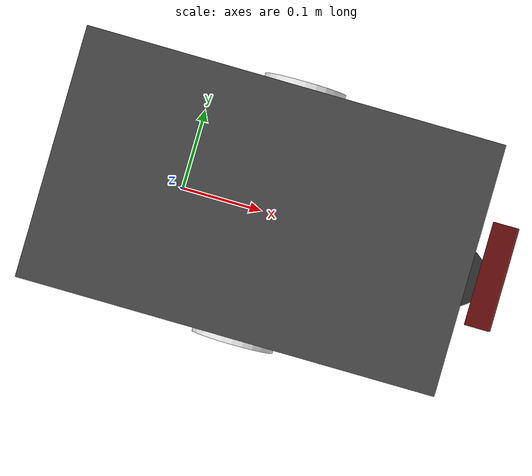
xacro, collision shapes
<?xml version="1.0"?>
<robot xmlns:xacro="http://www.ros.org/wiki/xacro"  name="robot">

    <!-- Example link -->
    <xacro:include filename="robot_core.xacro"/>
    <xacro:include filename="gazebo_control.xacro"/>

    <xacro:generic_laser>
        <xacro:insert_block name="laser_pose" />
    </xacro:generic_laser>

    <xacro:depth_sensor>
        <xacro:insert_block name="depth_sensor_pose" />
    </xacro:depth_sensor>
</robot>

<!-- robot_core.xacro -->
<robot xmlns:xacro="http://www.ros.org/wiki/xacro" >

    <xacro:include filename="inertial_macros.xacro"/>
    <xacro:include filename="$(find robolaunch_cloudy_description)/sensors/generic_laser.urdf.xacro" />
    <xacro:include filename="$(find robolaunch_cloudy_description)/urdf/properties.urdf.xacro" />
    <xacro:include filename="$(find robolaunch_cloudy_description)/sensors/depth_sensor.urdf.xacro" />
    <xacro:property name="depth_sensor_pose">
        <origin xyz="0.38 0 0.11" rpy="0 -0.15 0"/>
    </xacro:property>

   <xacro:property name="scale_ratio" value="0.0015" />
   <link name="base_footprint"/>

    <material name="white">
        <color rgba="1 1 1 1" />
    </material>

    <material name="orange">
        <color rgba="1 0.3 0.1 1"/>
    </material>

    <material name="blue">
        <color rgba="0.2 0.2 1 1"/>
    </material>

    <material name="black">
        <color rgba="0 0 0 1"/>
    </material>
  <material name="gray">
        <color rgba="0.3 0.3 0.3 1"/>
    </material>

    <!-- BASE LINK -->

    <link name="base_link">

    </link>

    <joint name="base_to_footprint" type="fixed">
      <parent link="base_footprint"/>
      <child link="base_link"/>
      <origin xyz="0 0 0.035" rpy="0 0 0"/>
    </joint>

    <!-- CHASSIS LINK -->

    <joint name="chassis_joint" type="fixed">
        <parent link="base_link"/>
        <child link="chassis"/>
        <origin xyz="0 -0.2 0" rpy="0 0 1.57 "/>
    </joint>

    <link name="chassis">
        <visual>
            <origin xyz="0 0.15 -0.02" rpy="1.57 0 0"/>
            <geometry>
                <mesh scale="${scale_ratio} ${scale_ratio} ${scale_ratio}" filename="file://$(find robolaunch_cloudy_description)/urdf/meshes/body_v2.stl"/>
            </geometry>
            <material name="gray"/>
        </visual>
        <collision>
            <origin xyz="0.20 -0.1 0.075"/>
            <geometry>
                <box size="0.3 0.5 0.15"/>
            </geometry>
        </collision>
        <xacro:inertial_box mass="0.5" x="0.3" y="0.3" z="0.15">
            <origin xyz="0.15 0 0.072" rpy="0 0 0"/>
        </xacro:inertial_box>
    </link>
    <gazebo reference="chassis">
    <material>Gazebo/DarkGrey</material>
      <mu1>0.2</mu1>
      <mu2>0.2</mu2>

    </gazebo>

    <!-- LEFT WHEEL LINK -->

    <joint name="left_wheel_joint" type="continuous">
        <parent link="base_link"/>
        <child link="left_wheel"/>
        <origin xyz="0.11 0.14 0.046" rpy="-${pi/2} 0 0" />
        <axis xyz="0 0 1"/>
    </joint>

    <link name="right_wheel">
        <visual>
            <geometry>
                <mesh scale="${scale_ratio} ${scale_ratio} ${scale_ratio}" filename="file://$(find robolaunch_cloudy_description)/urdf/meshes/wheel_v2.stl" />
            </geometry>
            <material name="white"/>
            <origin xyz="-0.067 -0.05 -0.15" rpy="0 0 0" />

        </visual>
        <collision>
            <geometry>
                <cylinder radius="0.05" length="0.04"/>
            </geometry>
        </collision>
        <xacro:inertial_cylinder mass="0.1" length="0.04" radius="0.05">
            <origin xyz="0 0 0" rpy="0 0 0"/>
        </xacro:inertial_cylinder>
    </link>
    <gazebo reference="left_wheel">
    <material>Gazebo/White</material>
    </gazebo>
    <!-- RIGHT WHEEL LINK -->

    <joint name="right_wheel_joint" type="continuous">
        <parent link="base_link"/>
        <child link="right_wheel"/>
        <origin xyz="0.11 -0.14 0.046" rpy="-${pi/2} 0 0" />
        <axis xyz="0 0 1"/>
    </joint>

    <link name="left_wheel">
        <visual>
            <geometry>
                <mesh scale="${scale_ratio} ${scale_ratio} ${scale_ratio}" filename="file://$(find robolaunch_cloudy_description)/urdf/meshes/wheel_v2.stl" />
            </geometry>
            <origin xyz="-0.067 -0.05 -0.15" rpy="0 0 0" />
            <material name="white"/>
        </visual>
        <collision>
            <geometry>
                <cylinder radius="0.05" length="0.04"/>
            </geometry>
        </collision>
        <xacro:inertial_cylinder mass="0.1" length="0.04" radius="0.05">
            <origin xyz="0 0 0" rpy="0 0 0"/>
        </xacro:inertial_cylinder>
    </link>
    <gazebo reference="right_wheel">
    <material>Gazebo/White</material>
    </gazebo>

    <!-- CASTER WHEEL LINK -->

</robot>

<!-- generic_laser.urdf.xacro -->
<robot xmlns:xacro="http://ros.org/wiki/xacro">
  <xacro:include filename="$(find robolaunch_cloudy_description)/sensors/laser.urdf.xacro" />

  <xacro:macro name="generic_laser" params="*origin">
    <xacro:laser
      update_rate="10"
      ray_count="360"
      min_angle="-3.1416"
      max_angle="3.1416"
      min_range="0.08"
      max_range="12.0"
      frame_id="laser"
      topic_name="scan"
    >
      <xacro:insert_block name="origin" />
    </xacro:laser>
  </xacro:macro>

  <xacro:macro name="generic_base_laser" params="*origin">
    <xacro:laser
      update_rate="10"
      ray_count="360"
      min_angle="-3.1416"
      max_angle="3.1416"
      min_range="0.21"
      max_range="5.5"
      frame_id="base_laser"
      topic_name="base/scan"
    >
      <xacro:insert_block name="origin" />
    </xacro:laser>
  </xacro:macro>
</robot>

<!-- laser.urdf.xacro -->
<robot xmlns:xacro="http://ros.org/wiki/xacro">
  <xacro:property name="M_PI" value="3.1415926535897931" />
  <xacro:macro name="laser" params="*origin update_rate ray_count min_angle max_angle min_range max_range frame_id topic_name">
    <link name="${frame_id}">
      <visual>
        <origin xyz="0.04 -0.038 -0.03" rpy="1.57 0 3.14"/>
        <geometry>
              <mesh scale="${scale_ratio} ${scale_ratio} ${scale_ratio}" filename="file://$(find robolaunch_cloudy_description)/urdf/meshes/lidar.stl" />

         </geometry>
  <material name="darkgray">
        <color rgba="0.2 0.2 0.2 1"/>
    </material>

      </visual>
      <collision>
        <origin xyz="0.02 0 -0.018" rpy="0 0 0"/>
        <geometry>
          <cylinder radius="0.0375" length="0.02"/>
        </geometry>
      </collision>

      <inertial>
        <origin xyz="0 0 0" rpy="0 0 0"/>
        <mass value="0.1"/>
        <inertia ixx="${(2/5) * 0.1 * (0.0375 * 0.0375)}" ixy="0" ixz="0"
                 iyy="${(2/5) * 0.1 * (0.0375 * 0.0375)}" iyz="0"
                 izz="${(2/5) * 0.1 * (0.0375 * 0.0375)}" />
      </inertial>
    </link>

    <gazebo reference="${frame_id}">
    <material>Gazebo/Black</material>
    </gazebo>
    <joint name="${frame_id}_to_base_link" type="fixed">
      <origin xyz="0.32 -0.01 0.085" rpy="0 0 0"/>

      <parent link="base_link"/>
      <child link="${frame_id}"/>
      <xacro:insert_block name="origin" />
    </joint>

    <gazebo reference="${frame_id}">
      <sensor type="ray" name="${frame_id}_head_hokuyo_sensor">
        <always_on>false</always_on>
        <update_rate>${update_rate}</update_rate>
        <pose>0 0 0 0 0 0</pose>
        <visualize>true</visualize> <!-- if you want to see laser scan lines into the gazebo you should enable this -->
        <ray>
          <scan>
            <horizontal>
              <samples>${ray_count}</samples>
              <resolution>1</resolution>
              <min_angle>${min_angle}</min_angle>
              <max_angle>${max_angle}</max_angle>
            </horizontal>
          </scan>
          <range>
            <min>${min_range}</min>
            <max>${max_range}</max>
            <resolution>0.01</resolution>
          </range>
        </ray>
        <plugin name="${frame_id}_gazebo_ros_head_hokuyo_controller" filename="libgazebo_ros_ray_sensor.so">
          <ros>
            <remapping>~/out:=${topic_name}</remapping>
          </ros>
          <output_type>sensor_msgs/LaserScan</output_type>
          <alwaysOn>true</alwaysOn>
          <updateRate>${update_rate}</updateRate>
          <topicName>${topic_name}</topicName>
          <frame_name>${frame_id}</frame_name>
          <output_type>sensor_msgs/LaserScan</output_type>
        </plugin>
      </sensor>
    </gazebo>
  </xacro:macro>
</robot>

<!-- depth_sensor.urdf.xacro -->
<robot xmlns:xacro="http://ros.org/wiki/xacro">
  <xacro:property name="M_PI" value="3.1415926535897931" />
  <xacro:macro name="depth_sensor" params="*origin">
    <link name="camera_link">
      <visual>
        <origin xyz="-0.05 -0.105 0" rpy="1.57 0 1.57"/>
        <geometry>
          <mesh scale="${scale_ratio} ${scale_ratio} ${scale_ratio}" filename="file://$(find robolaunch_cloudy_description)/urdf/meshes/realsense.stl" />
        </geometry>
        <material name="red">
          <color rgba="0.416 0.051 0.047 1.0"/>
        </material>
      </visual>

      <collision>
        <origin xyz="0 0 0" rpy="0 0 0"/>
        <geometry>
          <box size="0.030 0.124 0.030"/>
        </geometry>
      </collision>

      <inertial>
        <origin xyz="0 0 0" rpy="0 0 0"/>
        <mass value="0.135"/>
        <inertia ixx="${(1/12) * 0.135 * ((0.124  * 0.124)  + (0.030 * 0.030))}" ixy="0.0" ixz="0.0"
                 iyy="${(1/12) * 0.135 * ((0.030 * 0.030) + (0.030 * 0.030))}" iyz="0.0"
                 izz="${(1/12) * 0.135 * ((0.030 * 0.030) + (0.124  * 0.124))}"/>
      </inertial>
    </link>

    <gazebo reference="camera_link">
      <visual>
        <material>
          <ambient>0.416 0.051 0.047 1.0</ambient>
          <diffuse>0.416 0.051 0.047 1.0</diffuse>
          <specular>0.416 0.051 0.047 1.0</specular>
          <emissive>0.416 0.051 0.047 1.0</emissive>
        </material>
      </visual>
    </gazebo>rgb(213,28,40)

    <joint name="camera_to_base_link" type="fixed">
      <parent link="base_link"/>
      <child link="camera_link"/>
      <xacro:insert_block name="origin" />
    </joint>

    <link name="camera_depth_link"/>
    <joint name="camera_depth_joint" type="fixed">
      <origin xyz="0 0 0" rpy="-1.57 0 -1.57"/>
      <parent link="camera_link"/>
      <child link="camera_depth_link"/>
    </joint>

    <!-- https://github.com/ros-simulation/gazebo_ros_pkgs/wiki/ROS-2-Migration:-Camera#gazebo_ros_camera -->
    <gazebo reference="camera_link">
      <sensor name="camera" type="depth">
        <always_on>true</always_on>
        <update_rate>30.0</update_rate>
        <camera name="camera">
          <horizontal_fov>1.50098</horizontal_fov>
          <image>
            <width>640</width>
            <height>480</height>
            <format>R8G8B8</format>
          </image>
        </camera>
        <plugin name="camera_controller" filename="libgazebo_ros_camera.so">
          <ros>
            <remapping>/camera/camera_info:=/camera/color/camera_info</remapping>
            <remapping>/camera/image_raw:=/camera/color/image_raw</remapping>
            <remapping>/camera/points:=/camera/depth/color/points</remapping>
            <remapping>/camera/depth/image_raw:=/camera/depth/image_rect_raw</remapping>
          </ros>
          <min_depth>0.015</min_depth>
          <max_depth>3.0</max_depth>
          <hack_baseline>0.07</hack_baseline>
          <frame_name>camera_depth_link</frame_name>
          <distortion_k1>0.00000001</distortion_k1>
          <distortion_k2>0.00000001</distortion_k2>
          <distortion_k3>0.00000001</distortion_k3>
          <distortion_t1>0.00000001</distortion_t1>
          <distortion_t2>0.00000001</distortion_t2>
        </plugin>
      </sensor>

    </gazebo>
  </xacro:macro>
</robot>
